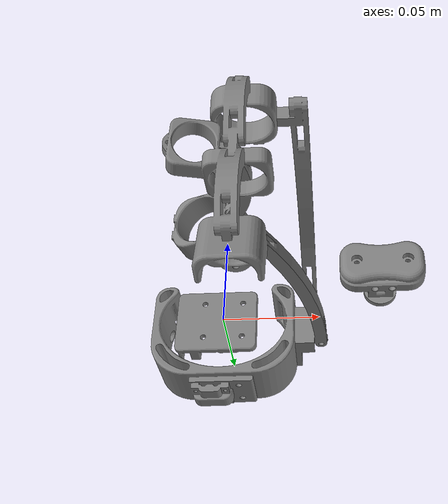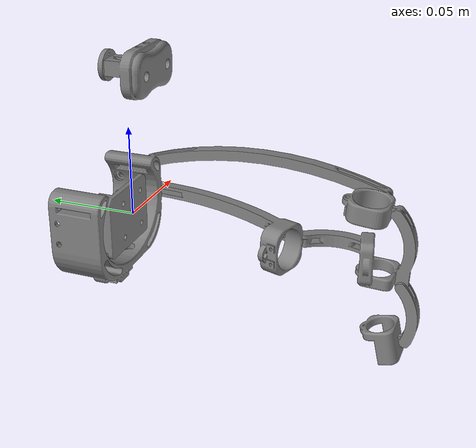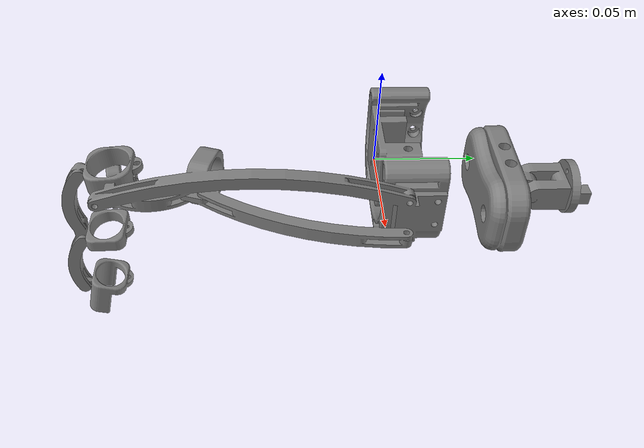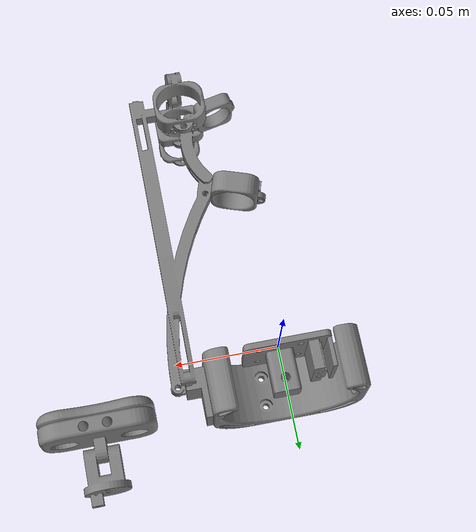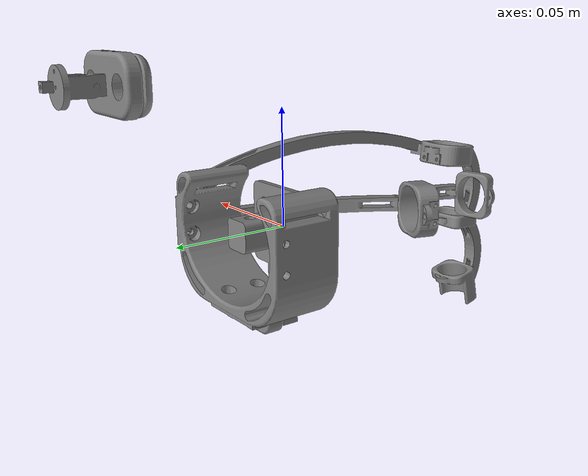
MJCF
<mujoco model="Exosuit_backplate_1st">
  <compiler meshdir="."/>

  <asset>
    <!-- 引用 STL 文件 -->
    <mesh name="my_mesh" file="Hand_exoskeleton_assembly.stl"/>
     <mesh name="my_mesh2" file="Elbow_support_assembly.stl"/>
    <mesh name="my_mesh3" file="Front_support_cable_amplificator.stl"/>
  </asset>

  <worldbody>
    <body name="object" pos="0 0 0">
      <!-- 使用 mesh 作为几何体 -->
      <body name="my_mesh">
        <geom type="mesh" mesh="my_mesh"/>
      </body>
      <body name="my_mesh2">
        <geom type="mesh" mesh="my_mesh2"/>
      </body>
      <body name="my_mesh3">
        <geom type="mesh" mesh="my_mesh3"/>
      </body>
    </body>
  </worldbody>
</mujoco>
